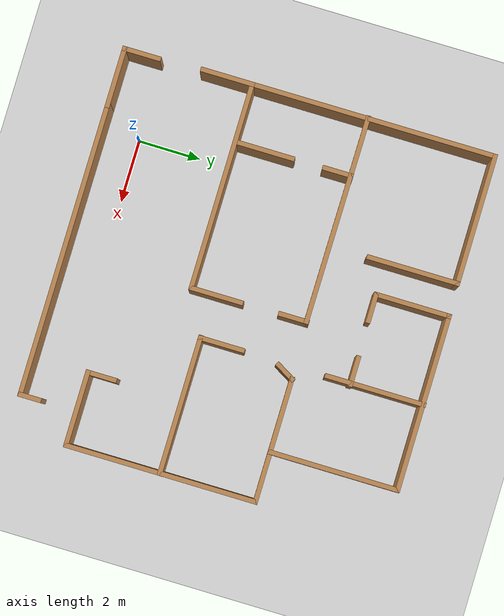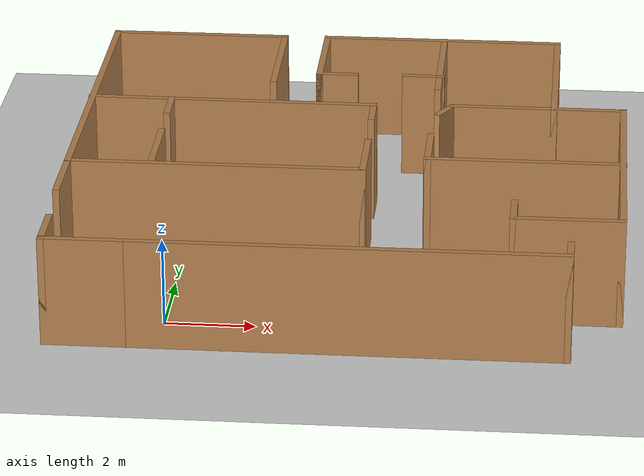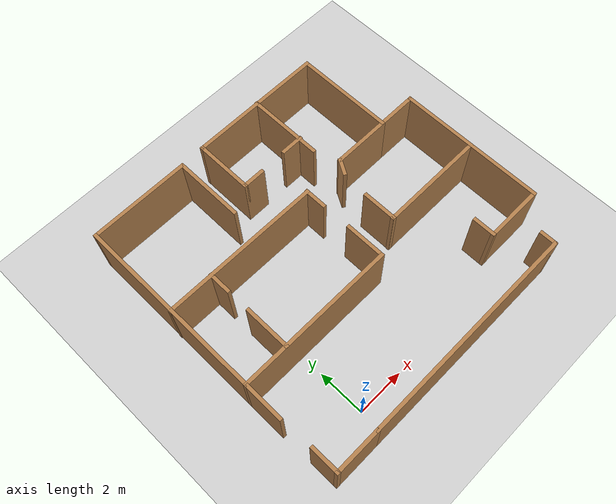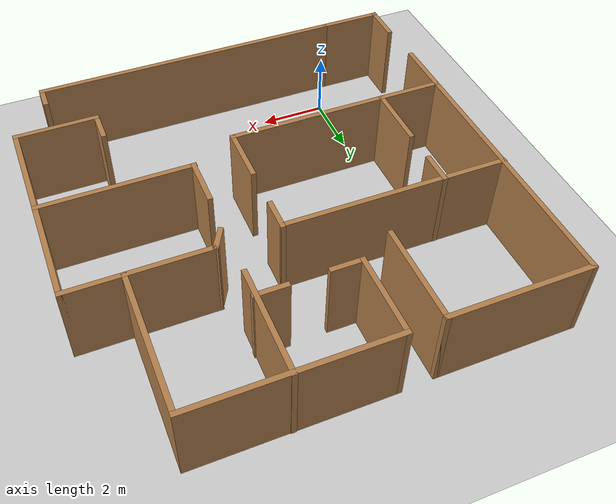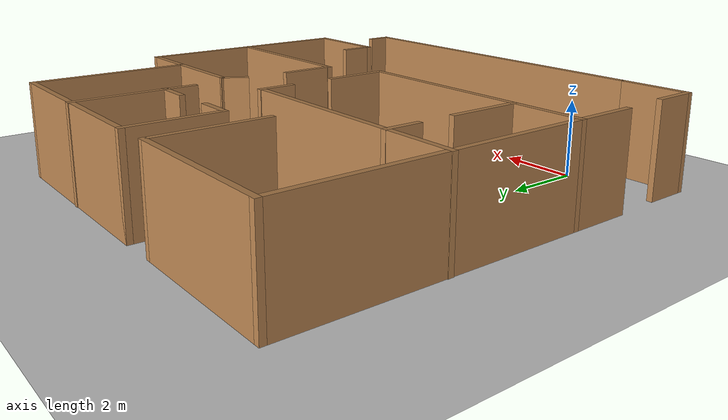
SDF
<sdf version="1.7">
 <world name="default">
  <light name="sun" type="directional">
   <pose>0 0 10 0 -0 0</pose>
   <diffuse>0.8 0.8 0.8 1</diffuse>
   <specular>0.2 0.2 0.2 1</specular>
   <attenuation>
    <range>1000</range>
    <constant>0.9</constant>
    <linear>0.01</linear>
    <quadratic>0.001</quadratic>
   </attenuation>
   <direction>-0.5 0.1 -0.9</direction>
   <spot><inner_angle>0</inner_angle><outer_angle>0</outer_angle><falloff>0</falloff></spot>
  </light>
  <model name="ground_plane">
   <static>1</static>
   <link name="link">
    <collision name="collision">
     <geometry><plane><normal>0 0 1</normal><size>100 100</size></plane></geometry>
     <surface>
      <contact><collide_bitmask>65535</collide_bitmask></contact>
      <friction><ode><mu>100</mu><mu2>50</mu2></ode></friction>
     </surface>
    </collision>
    <visual name="visual">
     <cast_shadows>0</cast_shadows>
     <geometry><plane><normal>0 0 1</normal><size>100 100</size></plane></geometry>
     <material>
      <script><uri>file://media/materials/scripts/gazebo.material</uri><name>Gazebo/Grey</name></script>
     </material>
    </visual>
   </link>
  </model>
  <gravity>0 0 -9.8</gravity>
  <magnetic_field>6e-06 2.3e-05 -4.2e-05</magnetic_field>
  <atmosphere type="adiabatic"/>
  <physics type="ode">
   <max_step_size>0.001</max_step_size>
   <real_time_factor>1</real_time_factor>
   <real_time_update_rate>1000</real_time_update_rate>
  </physics>
  <scene><ambient>0.4 0.4 0.4 1</ambient><background>0.7 0.7 0.7 1</background><shadows>1</shadows></scene>
  <spherical_coordinates>
   <surface_model>EARTH_WGS84</surface_model>
   <latitude_deg>0</latitude_deg>
   <longitude_deg>0</longitude_deg>
   <elevation>0</elevation>
   <heading_deg>0</heading_deg>
  </spherical_coordinates>
  <model name="house_2">
   <pose>3.66445 4.8879 0 0 -0 0</pose>
   <link name="Wall_11">
    <collision name="Wall_11_Collision">
     <geometry><box><size>4.26764 0.15 2.5</size></box></geometry>
     <pose>0 0 1.25 0 -0 0</pose>
    </collision>
    <visual name="Wall_11_Visual">
     <pose>0 0 1.25 0 -0 0</pose>
     <geometry><box><size>4.26764 0.15 2.5</size></box></geometry>
     <material>
      <script><uri>file://media/materials/scripts/gazebo.material</uri><name>Gazebo/Wood</name></script>
      <ambient>1 1 1 1</ambient>
     </material>
     <meta><layer>0</layer></meta>
    </visual>
    <pose>-4.11349 5.95495 0 0 -0 0</pose>
   </link>
   <link name="Wall_12">
    <collision name="Wall_12_Collision">
     <geometry><box><size>3 0.15 2.5</size></box></geometry>
     <pose>0 0 1.25 0 -0 0</pose>
    </collision>
    <visual name="Wall_12_Visual">
     <pose>0 0 1.25 0 -0 0</pose>
     <geometry><box><size>3 0.15 2.5</size></box></geometry>
     <material>
      <script><uri>file://media/materials/scripts/gazebo.material</uri><name>Gazebo/Wood</name></script>
      <ambient>1 1 1 1</ambient>
     </material>
     <meta><layer>0</layer></meta>
    </visual>
    <pose>-2.05475 4.52995 0 0 -0 -1.5708</pose>
   </link>
   <link name="Wall_15">
    <collision name="Wall_15_Collision">
     <geometry><box><size>6.75 0.15 2.5</size></box></geometry>
     <pose>0 0 1.25 0 -0 0</pose>
    </collision>
    <visual name="Wall_15_Visual">
     <pose>0 0 1.25 0 -0 0</pose>
     <geometry><box><size>6.75 0.15 2.5</size></box></geometry>
     <material>
      <script><uri>file://media/materials/scripts/gazebo.material</uri><name>Gazebo/Wood</name></script>
      <ambient>1 1 1 1</ambient>
     </material>
     <meta><layer>0</layer></meta>
    </visual>
    <pose>-2.88973 1.83034 0 0 -0 -0.0053</pose>
   </link>
   <link name="Wall_16">
    <collision name="Wall_16_Collision">
     <geometry><box><size>1 0.15 2.5</size></box></geometry>
     <pose>0 0 1.25 0 -0 0</pose>
    </collision>
    <visual name="Wall_16_Visual">
     <pose>0 0 1.25 0 -0 0</pose>
     <geometry><box><size>1 0.15 2.5</size></box></geometry>
     <material>
      <script><uri>file://media/materials/scripts/gazebo.material</uri><name>Gazebo/Wood</name></script>
      <ambient>1 1 1 1</ambient>
     </material>
     <meta><layer>0</layer></meta>
    </visual>
    <pose>0.410272 1.40534 0 0 -0 -1.5708</pose>
   </link>
   <link name="Wall_18">
    <collision name="Wall_18_Collision">
     <geometry><box><size>1 0.15 2.5</size></box></geometry>
     <pose>0 0 1.25 0 -0 0</pose>
    </collision>
    <visual name="Wall_18_Visual">
     <pose>0 0 1.25 0 -0 0</pose>
     <geometry><box><size>1 0.15 2.5</size></box></geometry>
     <material>
      <script><uri>file://media/materials/scripts/gazebo.material</uri><name>Gazebo/Wood</name></script>
      <ambient>1 1 1 1</ambient>
     </material>
     <meta><layer>0</layer></meta>
    </visual>
    <pose>-4.31829 1.42283 0 0 -0 -1.5708</pose>
   </link>
   <link name="Wall_2">
    <collision name="Wall_2_Collision">
     <geometry><box><size>9.5 0.15 2.5</size></box></geometry>
     <pose>0 0 1.25 0 -0 0</pose>
    </collision>
    <visual name="Wall_2_Visual">
     <pose>0 0 1.25 0 -0 0</pose>
     <geometry><box><size>9.5 0.15 2.5</size></box></geometry>
     <material>
      <script><uri>file://media/materials/scripts/gazebo.material</uri><name>Gazebo/Wood</name></script>
      <ambient>1 1 1 1</ambient>
     </material>
     <meta><layer>0</layer></meta>
    </visual>
    <pose>0.41601 -6.0121 0 0 -0 0</pose>
   </link>
   <link name="Wall_20">
    <collision name="Wall_20_Collision">
     <geometry><box><size>6.75 0.15 2.5</size></box></geometry>
     <pose>0 0 1.25 0 -0 0</pose>
    </collision>
    <visual name="Wall_20_Visual">
     <pose>0 0 1.25 0 -0 0</pose>
     <geometry><box><size>6.75 0.15 2.5</size></box></geometry>
     <material>
      <script><uri>file://media/materials/scripts/gazebo.material</uri><name>Gazebo/Wood</name></script>
      <ambient>1 1 1 1</ambient>
     </material>
     <meta><layer>0</layer></meta>
    </visual>
    <pose>-2.87224 -1.89505 0 0 -0 0</pose>
   </link>
   <link name="Wall_22">
    <collision name="Wall_22_Collision">
     <geometry><box><size>1.75 0.15 2.5</size></box></geometry>
     <pose>0 0 1.25 0 -0 0</pose>
    </collision>
    <visual name="Wall_22_Visual">
     <pose>0 0 1.25 0 -0 0</pose>
     <geometry><box><size>1.75 0.15 2.5</size></box></geometry>
     <material>
      <script><uri>file://media/materials/scripts/gazebo.material</uri><name>Gazebo/Wood</name></script>
      <ambient>1 1 1 1</ambient>
     </material>
     <meta><layer>0</layer></meta>
    </visual>
    <pose>0.427762 -1.09505 0 0 -0 1.5708</pose>
   </link>
   <link name="Wall_24">
    <collision name="Wall_24_Collision">
     <geometry><box><size>2 0.15 2.5</size></box></geometry>
     <pose>0 0 1.25 0 -0 0</pose>
    </collision>
    <visual name="Wall_24_Visual">
     <pose>0 0 1.25 0 -0 0</pose>
     <geometry><box><size>2 0.15 2.5</size></box></geometry>
     <material>
      <script><uri>file://media/materials/scripts/gazebo.material</uri><name>Gazebo/Wood</name></script>
      <ambient>1 1 1 1</ambient>
     </material>
     <meta><layer>0</layer></meta>
    </visual>
    <pose>-4.30918 -0.969318 0 0 -0 1.5708</pose>
   </link>
   <link name="Wall_26">
    <collision name="Wall_26_Collision">
     <geometry><box><size>1.99494 0.15 2.5</size></box></geometry>
     <pose>0 0 1.25 0 -0 0</pose>
    </collision>
    <visual name="Wall_26_Visual">
     <pose>0 0 1.25 0 -0 0</pose>
     <geometry><box><size>1.99494 0.15 2.5</size></box></geometry>
     <material>
      <script><uri>file://media/materials/scripts/gazebo.material</uri><name>Gazebo/Wood</name></script>
      <ambient>1 1 1 1</ambient>
     </material>
     <meta><layer>0</layer></meta>
    </visual>
    <pose>-5.18142 -6.0121 0 0 -0 3.14159</pose>
   </link>
   <link name="Wall_27">
    <collision name="Wall_27_Collision">
     <geometry><box><size>1.25 0.15 2.5</size></box></geometry>
     <pose>0 0 1.25 0 -0 0</pose>
    </collision>
    <visual name="Wall_27_Visual">
     <pose>0 0 1.25 0 -0 0</pose>
     <geometry><box><size>1.25 0.15 2.5</size></box></geometry>
     <material>
      <script><uri>file://media/materials/scripts/gazebo.material</uri><name>Gazebo/Wood</name></script>
      <ambient>1 1 1 1</ambient>
     </material>
     <meta><layer>0</layer></meta>
    </visual>
    <pose>-6.10385 -5.4621 0 0 -0 1.5708</pose>
   </link>
   <link name="Wall_29">
    <collision name="Wall_29_Collision">
     <geometry><box><size>1.75 0.15 2.5</size></box></geometry>
     <pose>0 0 1.25 0 -0 0</pose>
    </collision>
    <visual name="Wall_29_Visual">
     <pose>0 0 1.25 0 -0 0</pose>
     <geometry><box><size>1.75 0.15 2.5</size></box></geometry>
     <material>
      <script><uri>file://media/materials/scripts/gazebo.material</uri><name>Gazebo/Wood</name></script>
      <ambient>1 1 1 1</ambient>
     </material>
     <meta><layer>0</layer></meta>
    </visual>
    <pose>-6.17224 -2.69505 0 0 -0 -1.5708</pose>
   </link>
   <link name="Wall_34">
    <collision name="Wall_34_Collision">
     <geometry><box><size>5.75 0.15 2.5</size></box></geometry>
     <pose>0 0 1.25 0 -0 0</pose>
    </collision>
    <visual name="Wall_34_Visual">
     <pose>0 0 1.25 0 -0 0</pose>
     <geometry><box><size>5.75 0.15 2.5</size></box></geometry>
     <material>
      <script><uri>file://media/materials/scripts/gazebo.material</uri><name>Gazebo/Wood</name></script>
      <ambient>1 1 1 1</ambient>
     </material>
     <meta><layer>0</layer></meta>
    </visual>
    <pose>1.78733 5.99297 0 0 -0 0</pose>
   </link>
   <link name="Wall_35">
    <collision name="Wall_35_Collision">
     <geometry><box><size>4.25 0.15 2.5</size></box></geometry>
     <pose>0 0 1.25 0 -0 0</pose>
    </collision>
    <visual name="Wall_35_Visual">
     <pose>0 0 1.25 0 -0 0</pose>
     <geometry><box><size>4.25 0.15 2.5</size></box></geometry>
     <material>
      <script><uri>file://media/materials/scripts/gazebo.material</uri><name>Gazebo/Wood</name></script>
      <ambient>1 1 1 1</ambient>
     </material>
     <meta><layer>0</layer></meta>
    </visual>
    <pose>4.58733 3.94297 0 0 -0 -1.5708</pose>
   </link>
   <link name="Wall_37">
    <collision name="Wall_37_Collision">
     <geometry><box><size>2.5 0.15 2.5</size></box></geometry>
     <pose>0 0 1.25 0 -0 0</pose>
    </collision>
    <visual name="Wall_37_Visual">
     <pose>0 0 1.25 0 -0 0</pose>
     <geometry><box><size>2.5 0.15 2.5</size></box></geometry>
     <material>
      <script><uri>file://media/materials/scripts/gazebo.material</uri><name>Gazebo/Wood</name></script>
      <ambient>1 1 1 1</ambient>
     </material>
     <meta><layer>0</layer></meta>
    </visual>
    <pose>3.41233 1.89297 0 0 -0 3.14159</pose>
   </link>
   <link name="Wall_57">
    <collision name="Wall_57_Collision">
     <geometry><box><size>3.25 0.15 2.5</size></box></geometry>
     <pose>0 0 1.25 0 -0 0</pose>
    </collision>
    <visual name="Wall_57_Visual">
     <pose>0 0 1.25 0 -0 0</pose>
     <geometry><box><size>3.25 0.15 2.5</size></box></geometry>
     <material>
      <script><uri>file://media/materials/scripts/gazebo.material</uri><name>Gazebo/Wood</name></script>
      <ambient>1 1 1 1</ambient>
     </material>
     <meta><layer>0</layer></meta>
    </visual>
    <pose>1.83905 4.4621 0 0 -0 -1.5708</pose>
   </link>
   <link name="Wall_59">
    <collision name="Wall_59_Collision">
     <geometry><box><size>2.5 0.15 2.5</size></box></geometry>
     <pose>0 0 1.25 0 -0 0</pose>
    </collision>
    <visual name="Wall_59_Visual">
     <pose>0 0 1.25 0 -0 0</pose>
     <geometry><box><size>2.5 0.15 2.5</size></box></geometry>
     <material>
      <script><uri>file://media/materials/scripts/gazebo.material</uri><name>Gazebo/Wood</name></script>
      <ambient>1 1 1 1</ambient>
     </material>
     <meta><layer>0</layer></meta>
    </visual>
    <pose>-1.01267 4.81797 0 0 -0 -1.5708</pose>
   </link>
   <link name="Wall_60">
    <collision name="Wall_60_Collision">
     <geometry><box><size>1 0.15 2.5</size></box></geometry>
     <pose>0 0 1.25 0 -0 0</pose>
    </collision>
    <visual name="Wall_60_Visual">
     <pose>0 0 1.25 0 -0 0</pose>
     <geometry><box><size>1 0.15 2.5</size></box></geometry>
     <material>
      <script><uri>file://media/materials/scripts/gazebo.material</uri><name>Gazebo/Wood</name></script>
      <ambient>1 1 1 1</ambient>
     </material>
     <meta><layer>0</layer></meta>
    </visual>
    <pose>-0.58767 3.64297 0 0 -0 0</pose>
   </link>
   <link name="Wall_62">
    <collision name="Wall_62_Collision">
     <geometry><box><size>1 0.15 2.5</size></box></geometry>
     <pose>0 0 1.25 0 -0 0</pose>
    </collision>
    <visual name="Wall_62_Visual">
     <pose>0 0 1.25 0 -0 0</pose>
     <geometry><box><size>1 0.15 2.5</size></box></geometry>
     <material>
      <script><uri>file://media/materials/scripts/gazebo.material</uri><name>Gazebo/Wood</name></script>
      <ambient>1 1 1 1</ambient>
     </material>
     <meta><layer>0</layer></meta>
    </visual>
    <pose>1.45373 3.67128 0 0 -0 3.14159</pose>
   </link>
   <link name="Wall_65">
    <collision name="Wall_65_Collision">
     <geometry><box><size>1.75 0.15 2.5</size></box></geometry>
     <pose>0 0 1.25 0 -0 0</pose>
    </collision>
    <visual name="Wall_65_Visual">
     <pose>0 0 1.25 0 -0 0</pose>
     <geometry><box><size>1.75 0.15 2.5</size></box></geometry>
     <material>
      <script><uri>file://media/materials/scripts/gazebo.material</uri><name>Gazebo/Wood</name></script>
      <ambient>1 1 1 1</ambient>
     </material>
     <meta><layer>0</layer></meta>
    </visual>
    <pose>5.38733 1.89297 0 0 -0 0</pose>
   </link>
   <link name="Wall_66">
    <collision name="Wall_66_Collision">
     <geometry><box><size>6.25 0.15 2.5</size></box></geometry>
     <pose>0 0 1.25 0 -0 0</pose>
    </collision>
    <visual name="Wall_66_Visual">
     <pose>0 0 1.25 0 -0 0</pose>
     <geometry><box><size>6.25 0.15 2.5</size></box></geometry>
     <material>
      <script><uri>file://media/materials/scripts/gazebo.material</uri><name>Gazebo/Wood</name></script>
      <ambient>1 1 1 1</ambient>
     </material>
     <meta><layer>0</layer></meta>
    </visual>
    <pose>6.18733 -1.15703 0 0 -0 -1.5708</pose>
   </link>
   <link name="Wall_68">
    <collision name="Wall_68_Collision">
     <geometry><box><size>2.5 0.15 2.5</size></box></geometry>
     <pose>0 0 1.25 0 -0 0</pose>
    </collision>
    <visual name="Wall_68_Visual">
     <pose>0 0 1.25 0 -0 0</pose>
     <geometry><box><size>2.5 0.15 2.5</size></box></geometry>
     <material>
      <script><uri>file://media/materials/scripts/gazebo.material</uri><name>Gazebo/Wood</name></script>
      <ambient>1 1 1 1</ambient>
     </material>
     <meta><layer>0</layer></meta>
    </visual>
    <pose>5.01233 -4.20703 0 0 -0 3.14159</pose>
   </link>
   <link name="Wall_69">
    <collision name="Wall_69_Collision">
     <geometry><box><size>1 0.15 2.5</size></box></geometry>
     <pose>0 0 1.25 0 -0 0</pose>
    </collision>
    <visual name="Wall_69_Visual">
     <pose>0 0 1.25 0 -0 0</pose>
     <geometry><box><size>1 0.15 2.5</size></box></geometry>
     <material>
      <script><uri>file://media/materials/scripts/gazebo.material</uri><name>Gazebo/Wood</name></script>
      <ambient>1 1 1 1</ambient>
     </material>
     <meta><layer>0</layer></meta>
    </visual>
    <pose>3.83733 -3.78203 0 0 -0 1.5708</pose>
   </link>
   <link name="Wall_72">
    <collision name="Wall_72_Collision">
     <geometry><box><size>4.52645 0.15 2.5</size></box></geometry>
     <pose>0 0 1.25 0 -0 0</pose>
    </collision>
    <visual name="Wall_72_Visual">
     <pose>0 0 1.25 0 -0 0</pose>
     <geometry><box><size>4.52645 0.15 2.5</size></box></geometry>
     <material>
      <script><uri>file://media/materials/scripts/gazebo.material</uri><name>Gazebo/Wood</name></script>
      <ambient>1 1 1 1</ambient>
     </material>
     <meta><layer>0</layer></meta>
    </visual>
    <pose>4.00185 -1.1823 0 0 -0 3.14159</pose>
   </link>
   <link name="Wall_74">
    <collision name="Wall_74_Collision">
     <geometry><box><size>1.5 0.15 2.5</size></box></geometry>
     <pose>0 0 1.25 0 -0 0</pose>
    </collision>
    <visual name="Wall_74_Visual">
     <pose>0 0 1.25 0 -0 0</pose>
     <geometry><box><size>1.5 0.15 2.5</size></box></geometry>
     <material>
      <script><uri>file://media/materials/scripts/gazebo.material</uri><name>Gazebo/Wood</name></script>
      <ambient>1 1 1 1</ambient>
     </material>
     <meta><layer>0</layer></meta>
    </visual>
    <pose>1.82685 -0.507299 0 0 -0 1.5708</pose>
   </link>
   <link name="Wall_78">
    <collision name="Wall_78_Collision">
     <geometry><box><size>0.75 0.15 2.5</size></box></geometry>
     <pose>0 0 1.25 0 -0 0</pose>
    </collision>
    <visual name="Wall_78_Visual">
     <pose>0 0 1.25 0 -0 0</pose>
     <geometry><box><size>0.75 0.15 2.5</size></box></geometry>
     <material>
      <script><uri>file://media/materials/scripts/gazebo.material</uri><name>Gazebo/Wood</name></script>
      <ambient>1 1 1 1</ambient>
     </material>
     <meta><layer>0</layer></meta>
    </visual>
    <pose>2.08733 1.63316 0 0 -0 -2.0944</pose>
   </link>
   <link name="Wall_84">
    <collision name="Wall_84_Collision">
     <geometry><box><size>0.75 0.15 2.5</size></box></geometry>
     <pose>0 0 1.25 0 -0 0</pose>
    </collision>
    <visual name="Wall_84_Visual">
     <pose>0 0 1.25 0 -0 0</pose>
     <geometry><box><size>0.75 0.15 2.5</size></box></geometry>
     <material>
      <script><uri>file://media/materials/scripts/gazebo.material</uri><name>Gazebo/Wood</name></script>
      <ambient>1 1 1 1</ambient>
     </material>
     <meta><layer>0</layer></meta>
    </visual>
    <pose>5.09101 -5.7121 0 0 -0 1.5708</pose>
   </link>
   <link name="Wall_9">
    <collision name="Wall_9_Collision">
     <geometry><box><size>8 0.15 2.5</size></box></geometry>
     <pose>0 0 1.25 0 -0 0</pose>
    </collision>
    <visual name="Wall_9_Visual">
     <pose>0 0 1.25 0 -0 0</pose>
     <geometry><box><size>8 0.15 2.5</size></box></geometry>
     <material>
      <script><uri>file://media/materials/scripts/gazebo.material</uri><name>Gazebo/Wood</name></script>
      <ambient>1 1 1 1</ambient>
     </material>
     <meta><layer>0</layer></meta>
    </visual>
    <pose>-6.17224 2.02995 0 0 -0 1.5708</pose>
   </link>
   <static>1</static>
  </model>
 </world>
</sdf>
